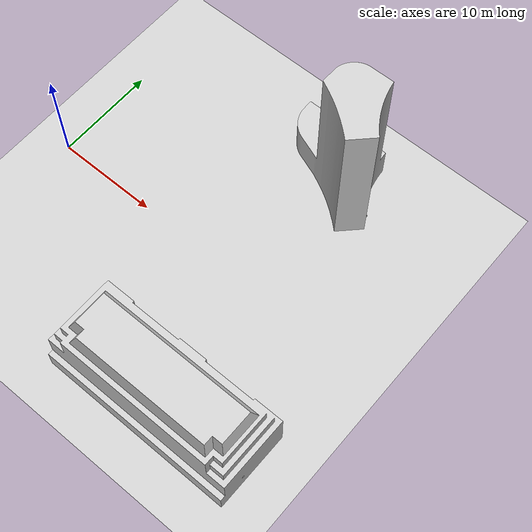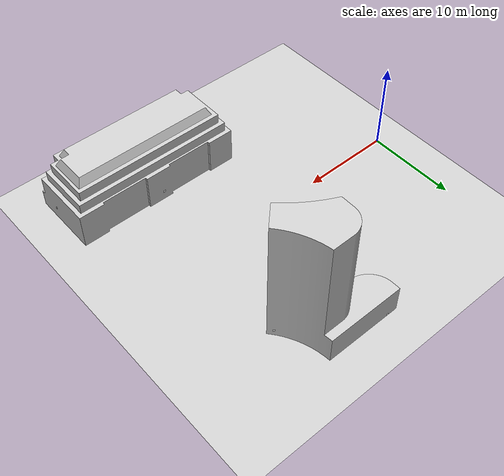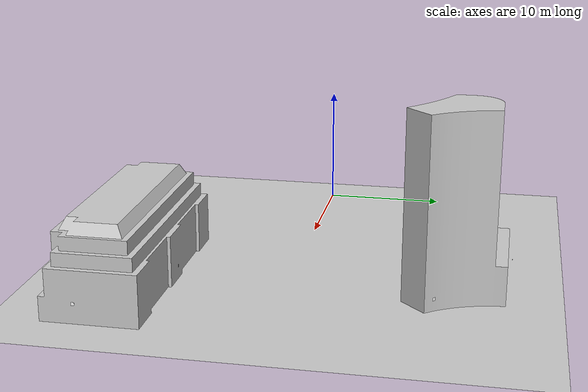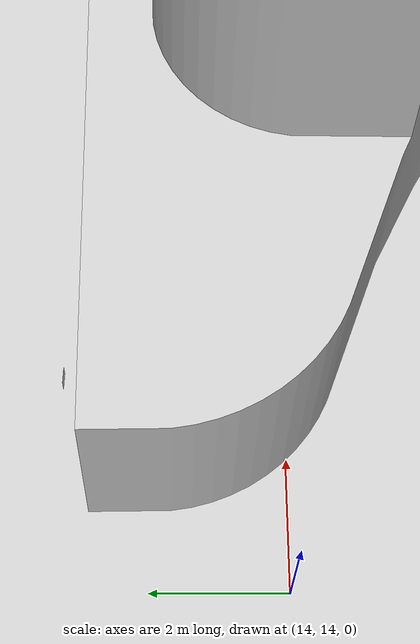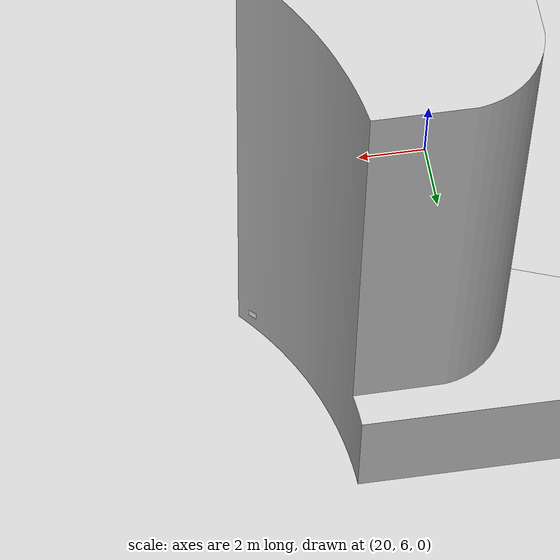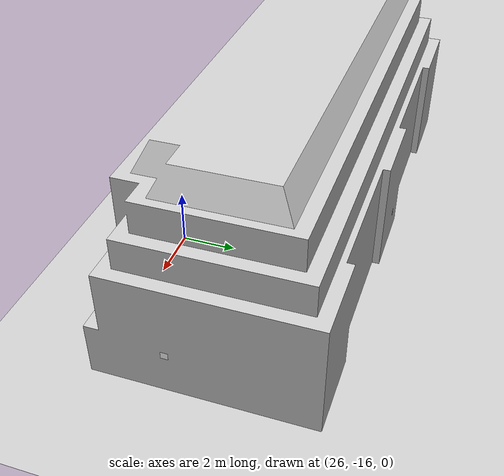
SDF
<sdf version='1.10'>
  <world name='test_1_world'>
    <physics type='ode'>
      <max_step_size>0.002</max_step_size>
      <real_time_factor>1</real_time_factor>
      <real_time_update_rate>1000</real_time_update_rate>
    </physics>
    <plugin name='gz::sim::systems::Physics' filename='libgz-sim-physics-system.so'/>
    <plugin name='gz::sim::systems::UserCommands' filename='libgz-sim-user-commands-system.so'/>
    <plugin name='gz::sim::systems::SceneBroadcaster' filename='libgz-sim-scene-broadcaster-system.so'/>
    <plugin name='gz::sim::systems::Contact' filename='libgz-sim-contact-system.so'/>
    <plugin name='gz::sim::systems::Imu' filename='libgz-sim-imu-system.so'/>
    <plugin name='gz::sim::systems::AirPressure' filename='libgz-sim-air-pressure-system.so'/>
    <plugin name='gz::sim::systems::Sensors' filename='libgz-sim-sensors-system.so'>
      <render_engine>ogre2</render_engine>
    </plugin>
    <gravity>0 0 -9.8066499999999994</gravity>
    <magnetic_field>6.0000000000000002e-06 2.3e-05 -4.1999999999999998e-05</magnetic_field>
    <atmosphere type='adiabatic'/>
    <scene>
      <grid>false</grid>
      <ambient>0.400000006 0.400000006 0.400000006 1</ambient>
      <background>0.699999988 0.699999988 0.699999988 1</background>
      <shadows>true</shadows>
    </scene>
    <model name='ground_plane'>
      <pose>60 60 0 0 0 0</pose>
      <static>true</static>
      <link name='link'>
        <collision name='collision'>
          <geometry>
            <plane>
              <normal>0 0 1</normal>
              <size>150 150</size>
            </plane>
          </geometry>
          <surface>
            <friction>
              <ode/>
            </friction>
            <bounce/>
            <contact/>
          </surface>
        </collision>
        <visual name='visual'>
          <geometry>
            <plane>
              <normal>0 0 1</normal>
              <size>150 150</size>
            </plane>
          </geometry>
          <material>
            <ambient>0.800000012 0.800000012 0.800000012 1</ambient>
            <diffuse>0.800000012 0.800000012 0.800000012 1</diffuse>
            <specular>0.800000012 0.800000012 0.800000012 1</specular>
          </material>
        </visual>
        <pose>0 0 0 0 0 0</pose>
        <inertial>
          <pose>0 0 0 0 0 0</pose>
          <mass>1</mass>
          <inertia>
            <ixx>1</ixx>
            <ixy>0</ixy>
            <ixz>0</ixz>
            <iyy>1</iyy>
            <iyz>0</iyz>
            <izz>1</izz>
          </inertia>
        </inertial>
        <enable_wind>false</enable_wind>
      </link>
      <self_collide>false</self_collide>
    </model>
    <include>
      <uri>file:///root/CrazySim/ros2_ws/src/icuas25_competition/launch/../worlds/test_1</uri>
      <name>test_1</name>
      <pose>0 0 0 0 0 0</pose>
    </include>

    <include>
      <uri>file:///root/CrazySim/ros2_ws/src/icuas25_competition/launch/../worlds/aruco_markers/aruco_marker_1</uri>
      <name>aruco_marker_1</name>
      <pose>23.190269470214844 -8.6202917098999023 1.0176700353622437 -1.6204324428326125 1.5699999431151406 8.4230224488653522e-05</pose>
    </include>
    <include>
      <uri>file:///root/CrazySim/ros2_ws/src/icuas25_competition/launch/../worlds/aruco_markers/aruco_marker_2</uri>
      <name>aruco_marker_2</name>
      <pose>16.867752075195312 17.20750617980957 0.9855000376701355 1.5715900313756803 3.5523020308966699e-05 3.0969700001800842</pose>
    </include>
    <include>
      <uri>file:///root/CrazySim/ros2_ws/src/icuas25_competition/launch/../worlds/aruco_markers/aruco_marker_3</uri>
      <name>aruco_marker_3</name>
      <pose>18.996723175048828 -15.885404586791992 0.99999749660491943 1.5700239162498797 1.5700000086711392 2.3907585744440517e-05</pose>
    </include>
    <include>
      <uri>file:///root/CrazySim/ros2_ws/src/icuas25_competition/launch/../worlds/aruco_markers/aruco_marker_4</uri>
      <name>aruco_marker_4</name>
      <pose>26.012868881225586 11.683269500732422 1.0229065418243408 1.5702200436479115 -0.00055130054633746356 2.3752499883606655</pose>
    </include>
    <include>
      <uri>file:///root/CrazySim/ros2_ws/src/icuas25_competition/launch/../worlds/aruco_markers/aruco_marker_5</uri>
      <name>aruco_marker_5</name>
      <pose>33.134567260742188 -13.543848991394043 1.5343799591064453 1.5700000086716972 -1.9038041809693595e-08 1.5700000086716972</pose>
    </include>

    <light name='sun' type='directional'>
      <pose>0 0 100 0 0 0</pose>
      <cast_shadows>false</cast_shadows>
      <intensity>1</intensity>
      <direction>-0.5 0.10000000000000001 -0.90000000000000002</direction>
      <diffuse>0.800000012 0.800000012 0.800000012 1</diffuse>
      <specular>0.200000003 0.200000003 0.200000003 1</specular>
      <attenuation>
        <range>1000</range>
        <linear>0.01</linear>
        <constant>0.90000000000000002</constant>
        <quadratic>0.001</quadratic>
      </attenuation>
      <spot>
        <inner_angle>0</inner_angle>
        <outer_angle>0</outer_angle>
        <falloff>0</falloff>
      </spot>
    </light>
  </world>
</sdf>

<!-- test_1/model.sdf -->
<sdf version="1.9">
  <model name="test_1">
    <static>true</static>
    <link name="link">
      <collision name="collision">
        <geometry>
          <mesh>
            <uri>model://test_1/meshes/test_1.stl</uri>
          </mesh>
        </geometry>
      </collision>
      <visual name="visual">
        <geometry>
          <mesh>
            <uri>model://test_1/meshes/test_1.stl</uri>
          </mesh>
        </geometry>
        <material>
            <ambient>0.8 0.8 0.8 1</ambient>
            <diffuse>0.8 0.8 0.8 1</diffuse>
            <specular>0.8 0.8 0.8 1</specular>
        </material>
      </visual>
    </link>
  </model>
</sdf>

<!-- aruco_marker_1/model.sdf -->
<sdf version="1.9">
  <model name="aruco_marker_1">
    <static>true</static>
    <link name="link">
      <!-- ArUco Marker 0 -->
      <visual name="aruco_marker_1_vis">
        <pose>0 0 0 0 0 0</pose> <!-- Position: x, y, z; Rotation: roll, pitch, yaw -->
        <geometry>
          <plane>
            <normal>0 0 1</normal> <!-- Normal vector for the plane -->
            <size>0.25 0.25</size>   <!-- Size of the marker (e.g., 10cm x 10cm) -->
          </plane>
        </geometry>
        <material>
          <pbr>
            <metal>
              <albedo_map>marker_0001.png</albedo_map>
              <metalness>0.0</metalness>
            </metal>
          </pbr>
          <ambient>1 1 1 1</ambient>
          <diffuse>1 1 1 1</diffuse>
          <specular>0 0 0 1</specular>
        </material>
      </visual>
    </link>
  </model>
</sdf>

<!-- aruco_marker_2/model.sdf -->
<sdf version="1.9">
  <model name="aruco_marker_2">
    <static>true</static>
    <link name="link">
      <!-- ArUco Marker 0 -->
      <visual name="aruco_marker_2_vis">
        <pose>0 0 0 0 0 0</pose> <!-- Position: x, y, z; Rotation: roll, pitch, yaw -->
        <geometry>
          <plane>
            <normal>0 0 1</normal> <!-- Normal vector for the plane -->
            <size>0.25 0.25</size>   <!-- Size of the marker (e.g., 10cm x 10cm) -->
          </plane>
        </geometry>
        <material>
          <pbr>
            <metal>
              <albedo_map>marker_0002.png</albedo_map>
              <metalness>0.0</metalness>
            </metal>
          </pbr>
          <ambient>1 1 1 1</ambient>
          <diffuse>1 1 1 1</diffuse>
          <specular>0 0 0 1</specular>
        </material>
      </visual>
    </link>
  </model>
</sdf>

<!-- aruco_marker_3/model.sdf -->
<sdf version="1.9">
  <model name="aruco_marker_3">
    <static>true</static>
    <link name="link">
      <!-- ArUco Marker 0 -->
      <visual name="aruco_marker_3_vis">
        <pose>0 0 0 0 0 0</pose> <!-- Position: x, y, z; Rotation: roll, pitch, yaw -->
        <geometry>
          <plane>
            <normal>0 0 1</normal> <!-- Normal vector for the plane -->
            <size>0.25 0.25</size>   <!-- Size of the marker (e.g., 10cm x 10cm) -->
          </plane>
        </geometry>
        <material>
          <pbr>
            <metal>
              <albedo_map>marker_0003.png</albedo_map>
              <metalness>0.0</metalness>
            </metal>
          </pbr>
          <ambient>1 1 1 1</ambient>
          <diffuse>1 1 1 1</diffuse>
          <specular>0 0 0 1</specular>
        </material>
      </visual>
    </link>
  </model>
</sdf>

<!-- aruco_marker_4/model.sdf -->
<sdf version="1.9">
  <model name="aruco_marker_4">
    <static>true</static>
    <link name="link">
      <!-- ArUco Marker 0 -->
      <visual name="aruco_marker_4_vis">
        <pose>0 0 0 0 0 0</pose> <!-- Position: x, y, z; Rotation: roll, pitch, yaw -->
        <geometry>
          <plane>
            <normal>0 0 1</normal> <!-- Normal vector for the plane -->
            <size>0.25 0.25</size>   <!-- Size of the marker (e.g., 10cm x 10cm) -->
          </plane>
        </geometry>
        <material>
          <pbr>
            <metal>
              <albedo_map>marker_0004.png</albedo_map>
              <metalness>0.0</metalness>
            </metal>
          </pbr>
          <ambient>1 1 1 1</ambient>
          <diffuse>1 1 1 1</diffuse>
          <specular>0 0 0 1</specular>
        </material>
      </visual>
    </link>
  </model>
</sdf>

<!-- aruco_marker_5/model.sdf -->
<sdf version="1.9">
  <model name="aruco_marker_5">
    <static>true</static>
    <link name="link">
      <!-- ArUco Marker 0 -->
      <visual name="aruco_marker_5_vis">
        <pose>0 0 0 0 0 0</pose> <!-- Position: x, y, z; Rotation: roll, pitch, yaw -->
        <geometry>
          <plane>
            <normal>0 0 1</normal> <!-- Normal vector for the plane -->
            <size>0.25 0.25</size>   <!-- Size of the marker -->
          </plane>
        </geometry>
        <material>
          <pbr>
            <metal>
              <albedo_map>marker_0005.png</albedo_map>
              <metalness>0.0</metalness>
            </metal>
          </pbr>
          <ambient>1 1 1 1</ambient>
          <diffuse>1 1 1 1</diffuse>
          <specular>0 0 0 1</specular>
        </material>
      </visual>
    </link>
  </model>
</sdf>
